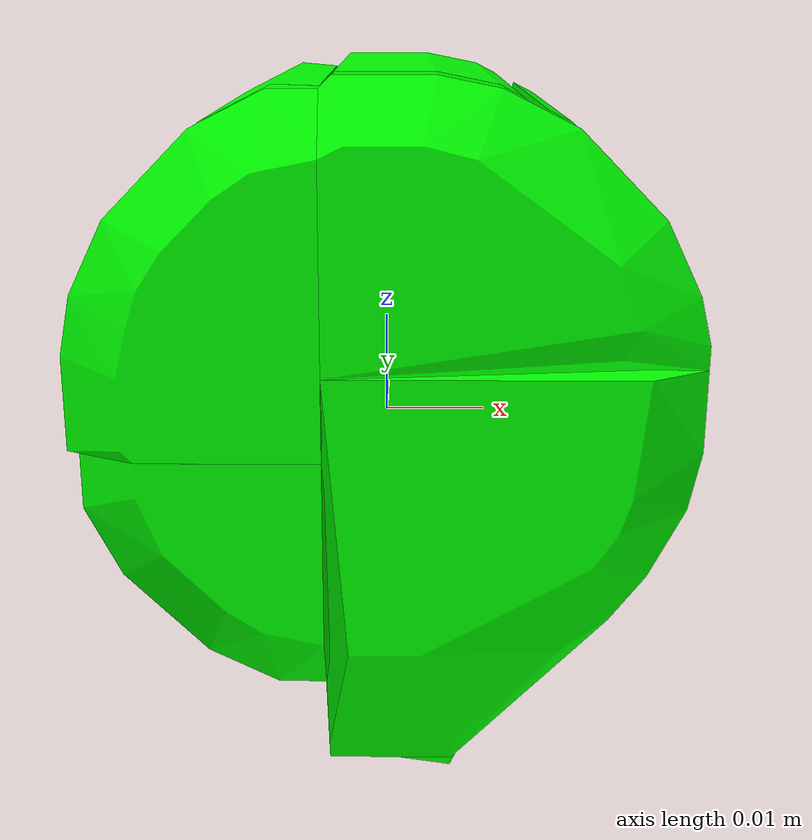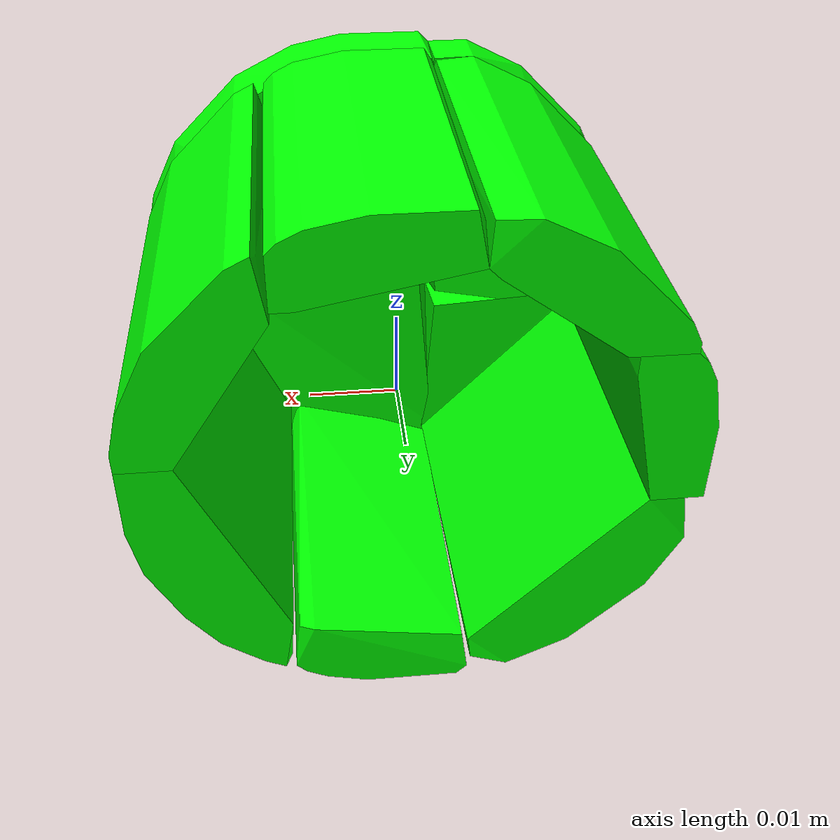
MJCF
<mujoco model="shapenet9-17">
  <asset>
    <mesh file="meshes/shapenet9-17/shapenet9-17_0.stl" name="shapenet9-17_0" scale="0.1 0.1 0.1"/>
    <mesh file="meshes/shapenet9-17/shapenet9-17_1.stl" name="shapenet9-17_1" scale="0.1 0.1 0.1"/>
    <mesh file="meshes/shapenet9-17/shapenet9-17_2.stl" name="shapenet9-17_2" scale="0.1 0.1 0.1"/>
    <mesh file="meshes/shapenet9-17/shapenet9-17_3.stl" name="shapenet9-17_3" scale="0.1 0.1 0.1"/>
    <mesh file="meshes/shapenet9-17/shapenet9-17_4.stl" name="shapenet9-17_4" scale="0.1 0.1 0.1"/>
    <mesh file="meshes/shapenet9-17/shapenet9-17_5.stl" name="shapenet9-17_5" scale="0.1 0.1 0.1"/>
    <mesh file="meshes/shapenet9-17/shapenet9-17_6.stl" name="shapenet9-17_6" scale="0.1 0.1 0.1"/>
    <mesh file="meshes/shapenet9-17/shapenet9-17_7.stl" name="shapenet9-17_7" scale="0.1 0.1 0.1"/>
    <mesh file="meshes/shapenet9-17/shapenet9-17_8.stl" name="shapenet9-17_8" scale="0.1 0.1 0.1"/>
    <mesh file="meshes/shapenet9-17/shapenet9-17_9.stl" name="shapenet9-17_9" scale="0.1 0.1 0.1"/>
    <mesh file="meshes/shapenet9-17/shapenet9-17_10.stl" name="shapenet9-17_10" scale="0.1 0.1 0.1"/>
  </asset>
  <worldbody>
    <body>
      <body name="collision">
        <geom pos="0 0 0" mesh="shapenet9-17_0" type="mesh" solimp="0.998 0.998 0.001" solref="0.001 1" density="100" friction="0.95 0.3 0.1" rgba="0 1 0 1" group="1" condim="4"/>
        <geom pos="0 0 0" mesh="shapenet9-17_1" type="mesh" solimp="0.998 0.998 0.001" solref="0.001 1" density="100" friction="0.95 0.3 0.1" rgba="0 1 0 1" group="1" condim="4"/>
        <geom pos="0 0 0" mesh="shapenet9-17_2" type="mesh" solimp="0.998 0.998 0.001" solref="0.001 1" density="100" friction="0.95 0.3 0.1" rgba="0 1 0 1" group="1" condim="4"/>
        <geom pos="0 0 0" mesh="shapenet9-17_3" type="mesh" solimp="0.998 0.998 0.001" solref="0.001 1" density="100" friction="0.95 0.3 0.1" rgba="0 1 0 1" group="1" condim="4"/>
        <geom pos="0 0 0" mesh="shapenet9-17_4" type="mesh" solimp="0.998 0.998 0.001" solref="0.001 1" density="100" friction="0.95 0.3 0.1" rgba="0 1 0 1" group="1" condim="4"/>
        <geom pos="0 0 0" mesh="shapenet9-17_5" type="mesh" solimp="0.998 0.998 0.001" solref="0.001 1" density="100" friction="0.95 0.3 0.1" rgba="0 1 0 1" group="1" condim="4"/>
        <geom pos="0 0 0" mesh="shapenet9-17_6" type="mesh" solimp="0.998 0.998 0.001" solref="0.001 1" density="100" friction="0.95 0.3 0.1" rgba="0 1 0 1" group="1" condim="4"/>
        <geom pos="0 0 0" mesh="shapenet9-17_7" type="mesh" solimp="0.998 0.998 0.001" solref="0.001 1" density="100" friction="0.95 0.3 0.1" rgba="0 1 0 1" group="1" condim="4"/>
        <geom pos="0 0 0" mesh="shapenet9-17_8" type="mesh" solimp="0.998 0.998 0.001" solref="0.001 1" density="100" friction="0.95 0.3 0.1" rgba="0 1 0 1" group="1" condim="4"/>
        <geom pos="0 0 0" mesh="shapenet9-17_9" type="mesh" solimp="0.998 0.998 0.001" solref="0.001 1" density="100" friction="0.95 0.3 0.1" rgba="0 1 0 1" group="1" condim="4"/>
        <geom pos="0 0 0" mesh="shapenet9-17_10" type="mesh" solimp="0.998 0.998 0.001" solref="0.001 1" density="100" friction="0.95 0.3 0.1" rgba="0 1 0 1" group="1" condim="4"/>
      </body>
      <body name="visual">
        <geom pos="0 0 0" mesh="shapenet9-17_0" type="mesh" rgba="0 1 0 1" conaffinity="0" contype="0" group="0" mass="0.0001"/>
        <geom pos="0 0 0" mesh="shapenet9-17_1" type="mesh" rgba="0 1 0 1" conaffinity="0" contype="0" group="0" mass="0.0001"/>
        <geom pos="0 0 0" mesh="shapenet9-17_2" type="mesh" rgba="0 1 0 1" conaffinity="0" contype="0" group="0" mass="0.0001"/>
        <geom pos="0 0 0" mesh="shapenet9-17_3" type="mesh" rgba="0 1 0 1" conaffinity="0" contype="0" group="0" mass="0.0001"/>
        <geom pos="0 0 0" mesh="shapenet9-17_4" type="mesh" rgba="0 1 0 1" conaffinity="0" contype="0" group="0" mass="0.0001"/>
        <geom pos="0 0 0" mesh="shapenet9-17_5" type="mesh" rgba="0 1 0 1" conaffinity="0" contype="0" group="0" mass="0.0001"/>
        <geom pos="0 0 0" mesh="shapenet9-17_6" type="mesh" rgba="0 1 0 1" conaffinity="0" contype="0" group="0" mass="0.0001"/>
        <geom pos="0 0 0" mesh="shapenet9-17_7" type="mesh" rgba="0 1 0 1" conaffinity="0" contype="0" group="0" mass="0.0001"/>
        <geom pos="0 0 0" mesh="shapenet9-17_8" type="mesh" rgba="0 1 0 1" conaffinity="0" contype="0" group="0" mass="0.0001"/>
        <geom pos="0 0 0" mesh="shapenet9-17_9" type="mesh" rgba="0 1 0 1" conaffinity="0" contype="0" group="0" mass="0.0001"/>
        <geom pos="0 0 0" mesh="shapenet9-17_10" type="mesh" rgba="0 1 0 1" conaffinity="0" contype="0" group="0" mass="0.0001"/>
      </body>
      <site rgba="0 0 0 0" size="0.005" pos="0 0 -0.06" name="bottom_site"/>
      <site rgba="0 0 0 0" size="0.005" pos="0 0 0.04" name="top_site"/>
      <site rgba="0 0 0 0" size="0.005" pos="0.025 0.025 0" name="horizontal_radius_site"/>
    </body>
  </worldbody>
</mujoco>
